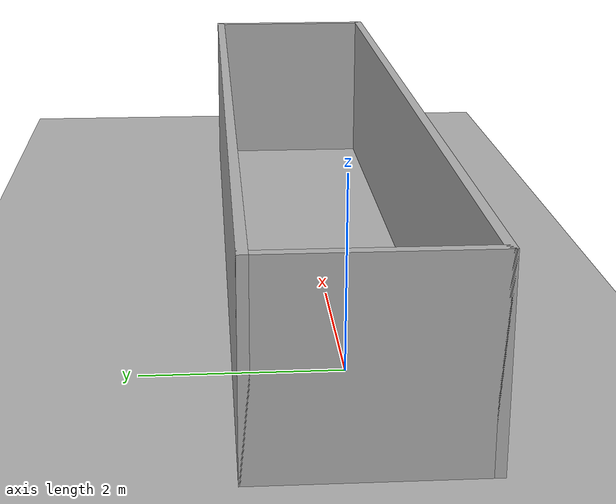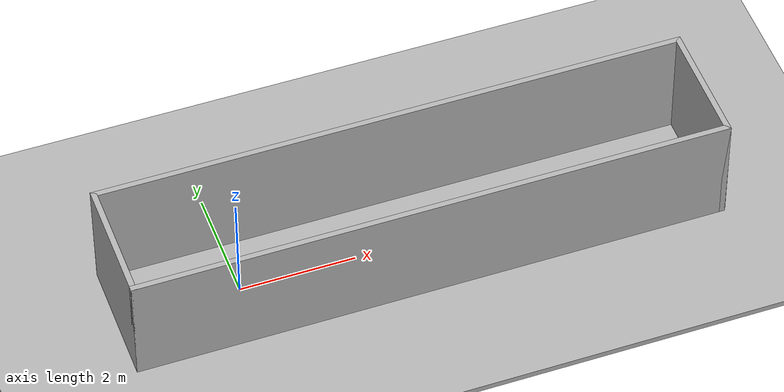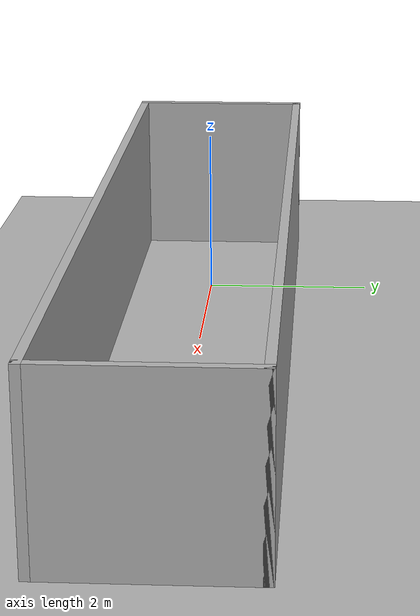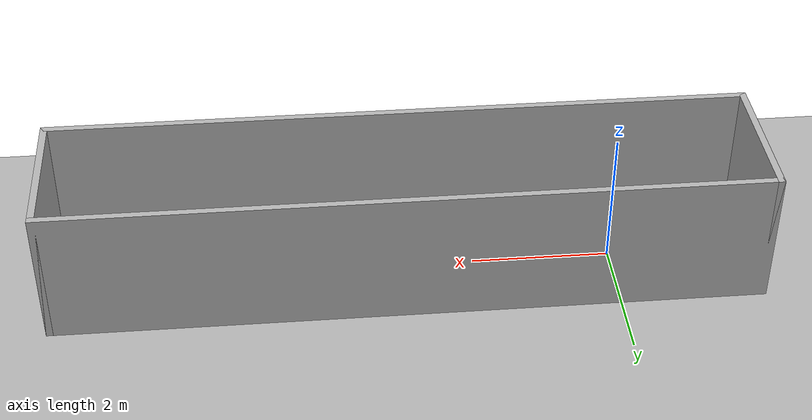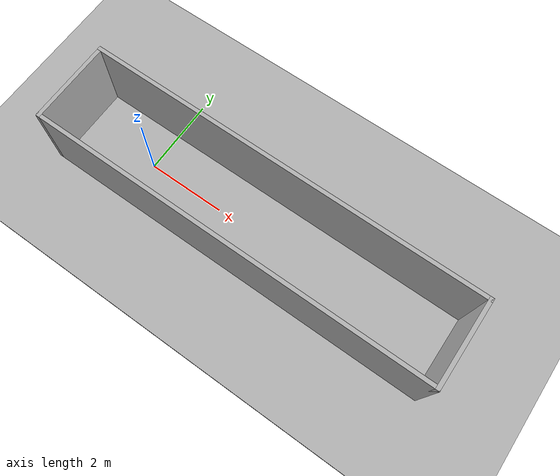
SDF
<sdf version="1.7">
 <world name="conversation_test_narrow">
  <physics type="ode"><max_step_size>0.003</max_step_size><real_time_factor>1.0</real_time_factor></physics>
  <plugin name="gz::sim::systems::Physics" filename="gz-sim-physics-system"/>
  <plugin name="gz::sim::systems::UserCommands" filename="gz-sim-user-commands-system"/>
  <plugin name="gz::sim::systems::SceneBroadcaster" filename="gz-sim-scene-broadcaster-system"/>
  <plugin name="gz::sim::systems::Contact" filename="gz-sim-contact-system"/>
  <light type="directional" name="sun">
   <cast_shadows>0</cast_shadows>
   <pose>-5 -3 10 0 0 0</pose>
   <diffuse>1 1 1 1</diffuse>
   <specular>1 1 1 1</specular>
   <direction>0 0 -1</direction>
  </light>
  <scene><ambient>0.8 0.8 0.8 1</ambient><background>0.9 0.9 0.9 1</background></scene>
  <model name="ground_plane">
   <static>true</static>
   <link name="link">
    <collision name="collision">
     <pose>0 0 -0.05 0 0 0</pose>
     <geometry><box><size>30 30 0.1</size></box></geometry>
    </collision>
    <visual name="visual">
     <pose>0 0 -0.05 0 0 0</pose>
     <geometry><box><size>30 30 0.1</size></box></geometry>
     <material><ambient>0.7 0.7 0.7 1</ambient><diffuse>0.7 0.7 0.7 1</diffuse></material>
    </visual>
   </link>
  </model>
  <model name="wall_left">
   <static>true</static>
   <pose>3.0 1.05 1.0 0 0 0</pose>
   <link name="link">
    <collision name="collision"><geometry><box><size>10.2 0.1 2.0</size></box></geometry></collision>
    <visual name="visual">
     <geometry><box><size>10.2 0.1 2.0</size></box></geometry>
     <material>
      <ambient>0.7 0.7 0.7 1</ambient>
      <diffuse>0.7 0.7 0.7 1</diffuse>
      <specular>0.1 0.1 0.1 1</specular>
     </material>
    </visual>
   </link>
  </model>
  <model name="wall_right">
   <static>true</static>
   <pose>3.0 -1.05 1.0 0 0 0</pose>
   <link name="link">
    <collision name="collision"><geometry><box><size>10.2 0.1 2.0</size></box></geometry></collision>
    <visual name="visual">
     <geometry><box><size>10.2 0.1 2.0</size></box></geometry>
     <material>
      <ambient>0.7 0.7 0.7 1</ambient>
      <diffuse>0.7 0.7 0.7 1</diffuse>
      <specular>0.1 0.1 0.1 1</specular>
     </material>
    </visual>
   </link>
  </model>
  <model name="wall_start">
   <static>true</static>
   <pose>-2.05 0.0 1.0 0 0 0</pose>
   <link name="link">
    <collision name="collision"><geometry><box><size>0.1 2.2 2.0</size></box></geometry></collision>
    <visual name="visual">
     <geometry><box><size>0.1 2.2 2.0</size></box></geometry>
     <material>
      <ambient>0.7 0.7 0.7 1</ambient>
      <diffuse>0.7 0.7 0.7 1</diffuse>
      <specular>0.1 0.1 0.1 1</specular>
     </material>
    </visual>
   </link>
  </model>
  <model name="wall_end">
   <static>true</static>
   <pose>8.05 0.0 1.0 0 0 0</pose>
   <link name="link">
    <collision name="collision"><geometry><box><size>0.1 2.2 2.0</size></box></geometry></collision>
    <visual name="visual">
     <geometry><box><size>0.1 2.2 2.0</size></box></geometry>
     <material>
      <ambient>0.7 0.7 0.7 1</ambient>
      <diffuse>0.7 0.7 0.7 1</diffuse>
      <specular>0.1 0.1 0.1 1</specular>
     </material>
    </visual>
   </link>
  </model>
 </world>
</sdf>
